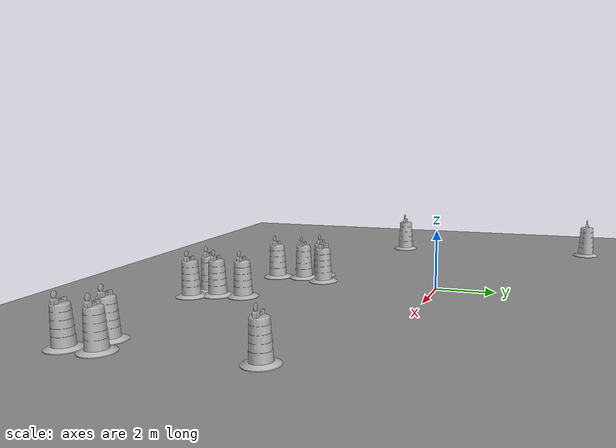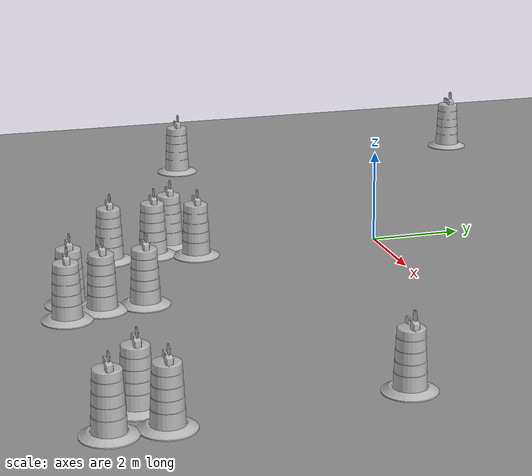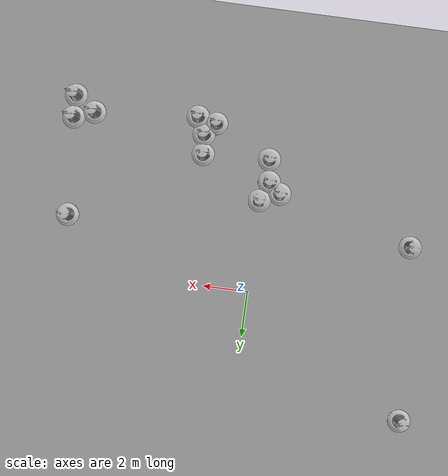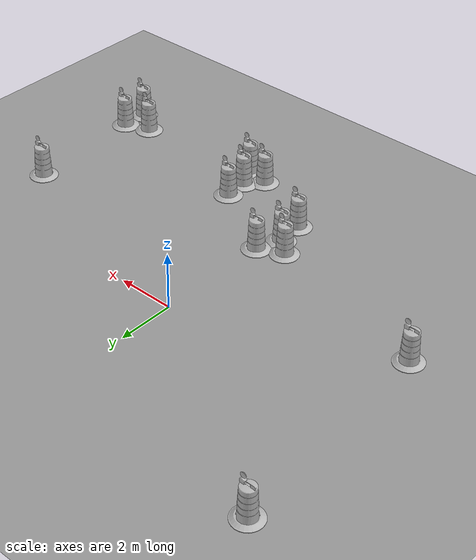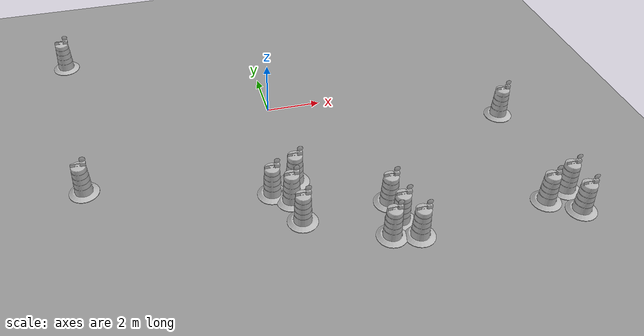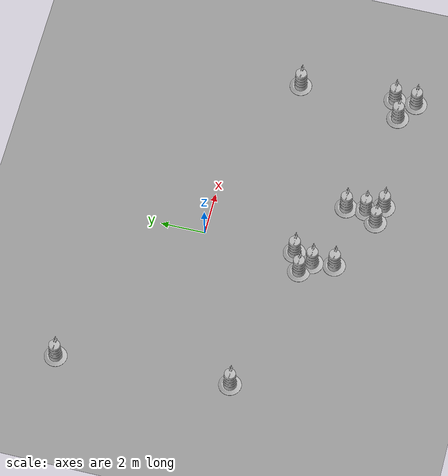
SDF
<sdf version="1.6">
 <world name="default">
  <light name="sun" type="directional">
   <pose>0 0 10 0 -0 0</pose>
   <diffuse>0.8 0.8 0.8 1</diffuse>
   <specular>0.2 0.2 0.2 1</specular>
   <attenuation>
    <range>1000</range>
    <constant>0.9</constant>
    <linear>0.01</linear>
    <quadratic>0.001</quadratic>
   </attenuation>
   <direction>0.5 0.1 -0.9</direction>
  </light>
  <scene><ambient>0.4 0.4 0.4 1</ambient><background>0.7 0.7 0.7 1</background><shadows>1</shadows></scene>
  <physics name="default_physics" default="0" type="ode">
   <max_step_size>0.01</max_step_size>
   <real_time_factor>1</real_time_factor>
   <real_time_update_rate>100</real_time_update_rate>
  </physics>
  <model name="ground_plane_0">
   <static>1</static>
   <link name="link">
    <collision name="collision">
     <geometry><plane><normal>0 0 1</normal><size>100 100</size></plane></geometry>
     <surface><friction><ode><mu>100</mu><mu2>50</mu2></ode></friction></surface>
    </collision>
    <visual name="visual">
     <cast_shadows>0</cast_shadows>
     <geometry><plane><normal>0 0 1</normal><size>100 100</size></plane></geometry>
     <material>
      <script><uri>file://media/materials/scripts/gazebo.material</uri><name>Gazebo/Grey</name></script>
     </material>
    </visual>
    <velocity_decay><linear>0</linear><angular>0</angular></velocity_decay>
   </link>
   <pose>0.497681 0 0 0 -0 0</pose>
  </model>
  <gravity>0 0 -9.8</gravity>
  <magnetic_field>6e-06 2.3e-05 -4.2e-05</magnetic_field>
  <atmosphere type="adiabatic"/>
  <spherical_coordinates>
   <surface_model>EARTH_WGS84</surface_model>
   <latitude_deg>0</latitude_deg>
   <longitude_deg>0</longitude_deg>
   <elevation>0</elevation>
   <heading_deg>0</heading_deg>
  </spherical_coordinates>
  <model name="Construction Barrel_36">
   <static>1</static>
   <link name="link">
    <inertial>
     <pose>0 0 0.4 0 -0 0</pose>
     <mass>500</mass>
     <inertia><ixx>51.2096</ixx><iyy>51.2096</iyy><izz>25</izz><ixy>0</ixy><ixz>0</ixz><iyz>0</iyz></inertia>
    </inertial>
    <collision name="collision">
     <geometry>
      <mesh><uri>model://construction_barrel/meshes/construction_barrel.dae</uri><scale>1 1 1</scale></mesh>
     </geometry>
    </collision>
    <visual name="visual">
     <geometry>
      <mesh><uri>model://construction_barrel/meshes/construction_barrel.dae</uri><scale>1 1 1</scale></mesh>
     </geometry>
    </visual>
   </link>
   <pose>-6.94597 -2.89875 0 0 -0 0</pose>
  </model>
  <model name="Construction Barrel_38">
   <static>1</static>
   <link name="link">
    <inertial>
     <pose>0 0 0.4 0 -0 0</pose>
     <mass>500</mass>
     <inertia><ixx>51.2096</ixx><iyy>51.2096</iyy><izz>25</izz><ixy>0</ixy><ixz>0</ixz><iyz>0</iyz></inertia>
    </inertial>
    <collision name="collision">
     <geometry>
      <mesh><uri>model://construction_barrel/meshes/construction_barrel.dae</uri><scale>1 1 1</scale></mesh>
     </geometry>
    </collision>
    <visual name="visual">
     <geometry>
      <mesh><uri>model://construction_barrel/meshes/construction_barrel.dae</uri><scale>1 1 1</scale></mesh>
     </geometry>
    </visual>
   </link>
   <pose>3.19411 -7.46297 0 0 -0 0</pose>
  </model>
  <model name="Construction Barrel_39">
   <static>1</static>
   <link name="link">
    <inertial>
     <pose>0 0 0.4 0 -0 0</pose>
     <mass>500</mass>
     <inertia><ixx>51.2096</ixx><iyy>51.2096</iyy><izz>25</izz><ixy>0</ixy><ixz>0</ixz><iyz>0</iyz></inertia>
    </inertial>
    <collision name="collision">
     <geometry>
      <mesh><uri>model://construction_barrel/meshes/construction_barrel.dae</uri><scale>1 1 1</scale></mesh>
     </geometry>
    </collision>
    <visual name="visual">
     <geometry>
      <mesh><uri>model://construction_barrel/meshes/construction_barrel.dae</uri><scale>1 1 1</scale></mesh>
     </geometry>
    </visual>
   </link>
   <pose>8.70072 -6.73105 0 0 -0 0</pose>
  </model>
  <model name="Construction Barrel_40">
   <static>1</static>
   <link name="link">
    <inertial>
     <pose>0 0 0.4 0 -0 0</pose>
     <mass>500</mass>
     <inertia><ixx>51.2096</ixx><iyy>51.2096</iyy><izz>25</izz><ixy>0</ixy><ixz>0</ixz><iyz>0</iyz></inertia>
    </inertial>
    <collision name="collision">
     <geometry>
      <mesh><uri>model://construction_barrel/meshes/construction_barrel.dae</uri><scale>1 1 1</scale></mesh>
     </geometry>
    </collision>
    <visual name="visual">
     <geometry>
      <mesh><uri>model://construction_barrel/meshes/construction_barrel.dae</uri><scale>1 1 1</scale></mesh>
     </geometry>
    </visual>
   </link>
   <pose>8.70815 -7.71102 0 0 -0 0</pose>
  </model>
  <model name="Construction Barrel_41">
   <static>1</static>
   <link name="link">
    <inertial>
     <pose>0 0 0.4 0 -0 0</pose>
     <mass>500</mass>
     <inertia><ixx>51.2096</ixx><iyy>51.2096</iyy><izz>25</izz><ixy>0</ixy><ixz>0</ixz><iyz>0</iyz></inertia>
    </inertial>
    <collision name="collision">
     <geometry>
      <mesh><uri>model://construction_barrel/meshes/construction_barrel.dae</uri><scale>1 1 1</scale></mesh>
     </geometry>
    </collision>
    <visual name="visual">
     <geometry>
      <mesh><uri>model://construction_barrel/meshes/construction_barrel.dae</uri><scale>1 1 1</scale></mesh>
     </geometry>
    </visual>
   </link>
   <pose>7.7993 -7.06186 0 0 -0 0</pose>
  </model>
  <model name="Construction Barrel_42">
   <static>1</static>
   <link name="link">
    <inertial>
     <pose>0 0 0.4 0 -0 0</pose>
     <mass>500</mass>
     <inertia><ixx>51.2096</ixx><iyy>51.2096</iyy><izz>25</izz><ixy>0</ixy><ixz>0</ixz><iyz>0</iyz></inertia>
    </inertial>
    <collision name="collision">
     <geometry>
      <mesh><uri>model://construction_barrel/meshes/construction_barrel.dae</uri><scale>1 1 1</scale></mesh>
     </geometry>
    </collision>
    <visual name="visual">
     <geometry>
      <mesh><uri>model://construction_barrel/meshes/construction_barrel.dae</uri><scale>1 1 1</scale></mesh>
     </geometry>
    </visual>
   </link>
   <pose>-7.45231 4.83691 0 0 -0 0</pose>
  </model>
  <model name="Construction Barrel_43">
   <static>1</static>
   <link name="link">
    <inertial>
     <pose>0 0 0.4 0 -0 0</pose>
     <mass>500</mass>
     <inertia><ixx>51.2096</ixx><iyy>51.2096</iyy><izz>25</izz><ixy>0</ixy><ixz>0</ixz><iyz>0</iyz></inertia>
    </inertial>
    <collision name="collision">
     <geometry>
      <mesh><uri>model://construction_barrel/meshes/construction_barrel.dae</uri><scale>1 1 1</scale></mesh>
     </geometry>
    </collision>
    <visual name="visual">
     <geometry>
      <mesh><uri>model://construction_barrel/meshes/construction_barrel.dae</uri><scale>1 1 1</scale></mesh>
     </geometry>
    </visual>
   </link>
   <pose>8.40472 -2.3883 0 0 -0 0</pose>
  </model>
  <model name="Construction Barrel_44">
   <static>1</static>
   <link name="link">
    <inertial>
     <pose>0 0 0.4 0 -0 0</pose>
     <mass>500</mass>
     <inertia><ixx>51.2096</ixx><iyy>51.2096</iyy><izz>25</izz><ixy>0</ixy><ixz>0</ixz><iyz>0</iyz></inertia>
    </inertial>
    <collision name="collision">
     <geometry>
      <mesh><uri>model://construction_barrel/meshes/construction_barrel.dae</uri><scale>1 1 1</scale></mesh>
     </geometry>
    </collision>
    <visual name="visual">
     <geometry>
      <mesh><uri>model://construction_barrel/meshes/construction_barrel.dae</uri><scale>1 1 1</scale></mesh>
     </geometry>
    </visual>
   </link>
   <pose>2.34056 -7.26592 0 0 -0 0</pose>
  </model>
  <model name="Construction Barrel_45">
   <static>1</static>
   <link name="link">
    <inertial>
     <pose>0 0 0.4 0 -0 0</pose>
     <mass>500</mass>
     <inertia><ixx>51.2096</ixx><iyy>51.2096</iyy><izz>25</izz><ixy>0</ixy><ixz>0</ixz><iyz>0</iyz></inertia>
    </inertial>
    <collision name="collision">
     <geometry>
      <mesh><uri>model://construction_barrel/meshes/construction_barrel.dae</uri><scale>1 1 1</scale></mesh>
     </geometry>
    </collision>
    <visual name="visual">
     <geometry>
      <mesh><uri>model://construction_barrel/meshes/construction_barrel.dae</uri><scale>1 1 1</scale></mesh>
     </geometry>
    </visual>
   </link>
   <pose>2.83392 -6.70651 0 0 -0 0</pose>
  </model>
  <model name="Construction Barrel_46">
   <static>1</static>
   <link name="link">
    <inertial>
     <pose>0 0 0.4 0 -0 0</pose>
     <mass>500</mass>
     <inertia><ixx>51.2096</ixx><iyy>51.2096</iyy><izz>25</izz><ixy>0</ixy><ixz>0</ixz><iyz>0</iyz></inertia>
    </inertial>
    <collision name="collision">
     <geometry>
      <mesh><uri>model://construction_barrel/meshes/construction_barrel.dae</uri><scale>1 1 1</scale></mesh>
     </geometry>
    </collision>
    <visual name="visual">
     <geometry>
      <mesh><uri>model://construction_barrel/meshes/construction_barrel.dae</uri><scale>1 1 1</scale></mesh>
     </geometry>
    </visual>
   </link>
   <pose>0.005956 -4.10843 0 0 -0 0</pose>
  </model>
  <model name="Construction Barrel_47">
   <static>1</static>
   <link name="link">
    <inertial>
     <pose>0 0 0.4 0 -0 0</pose>
     <mass>500</mass>
     <inertia><ixx>51.2096</ixx><iyy>51.2096</iyy><izz>25</izz><ixy>0</ixy><ixz>0</ixz><iyz>0</iyz></inertia>
    </inertial>
    <collision name="collision">
     <geometry>
      <mesh><uri>model://construction_barrel/meshes/construction_barrel.dae</uri><scale>1 1 1</scale></mesh>
     </geometry>
    </collision>
    <visual name="visual">
     <geometry>
      <mesh><uri>model://construction_barrel/meshes/construction_barrel.dae</uri><scale>1 1 1</scale></mesh>
     </geometry>
    </visual>
   </link>
   <pose>-0.864418 -4.51026 0 0 -0 0</pose>
  </model>
  <model name="Construction Barrel_48">
   <static>1</static>
   <link name="link">
    <inertial>
     <pose>0 0 0.4 0 -0 0</pose>
     <mass>500</mass>
     <inertia><ixx>51.2096</ixx><iyy>51.2096</iyy><izz>25</izz><ixy>0</ixy><ixz>0</ixz><iyz>0</iyz></inertia>
    </inertial>
    <collision name="collision">
     <geometry>
      <mesh><uri>model://construction_barrel/meshes/construction_barrel.dae</uri><scale>1 1 1</scale></mesh>
     </geometry>
    </collision>
    <visual name="visual">
     <geometry>
      <mesh><uri>model://construction_barrel/meshes/construction_barrel.dae</uri><scale>1 1 1</scale></mesh>
     </geometry>
    </visual>
   </link>
   <pose>-0.328143 -4.98916 0 0 -0 0</pose>
  </model>
  <model name="Construction Barrel_49">
   <static>1</static>
   <link name="link">
    <inertial>
     <pose>0 0 0.4 0 -0 0</pose>
     <mass>500</mass>
     <inertia><ixx>51.2096</ixx><iyy>51.2096</iyy><izz>25</izz><ixy>0</ixy><ixz>0</ixz><iyz>0</iyz></inertia>
    </inertial>
    <collision name="collision">
     <geometry>
      <mesh><uri>model://construction_barrel/meshes/construction_barrel.dae</uri><scale>1 1 1</scale></mesh>
     </geometry>
    </collision>
    <visual name="visual">
     <geometry>
      <mesh><uri>model://construction_barrel/meshes/construction_barrel.dae</uri><scale>1 1 1</scale></mesh>
     </geometry>
    </visual>
   </link>
   <pose>2.75374 -5.82544 0 0 -0 0</pose>
  </model>
  <model name="Construction Barrel_50">
   <static>1</static>
   <link name="link">
    <inertial>
     <pose>0 0 0.4 0 -0 0</pose>
     <mass>500</mass>
     <inertia><ixx>51.2096</ixx><iyy>51.2096</iyy><izz>25</izz><ixy>0</ixy><ixz>0</ixz><iyz>0</iyz></inertia>
    </inertial>
    <collision name="collision">
     <geometry>
      <mesh><uri>model://construction_barrel/meshes/construction_barrel.dae</uri><scale>1 1 1</scale></mesh>
     </geometry>
    </collision>
    <visual name="visual">
     <geometry>
      <mesh><uri>model://construction_barrel/meshes/construction_barrel.dae</uri><scale>1 1 1</scale></mesh>
     </geometry>
    </visual>
   </link>
   <pose>-0.208567 -5.97508 0 0 -0 0</pose>
  </model>
 </world>
</sdf>
